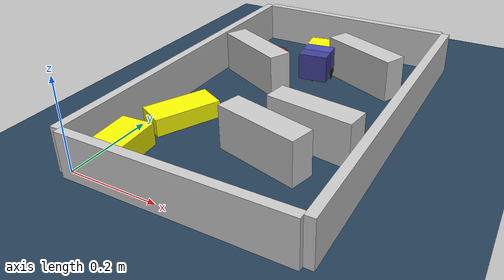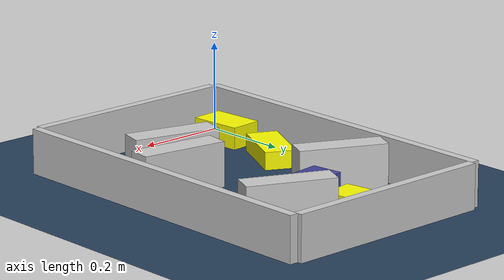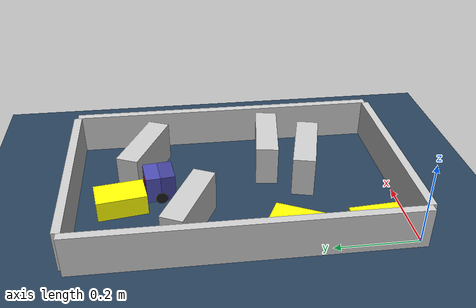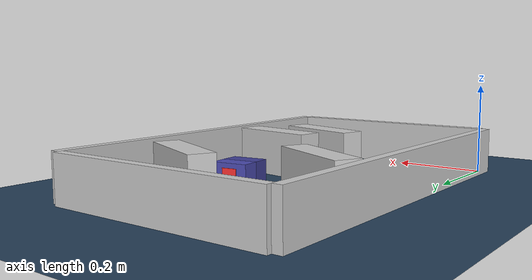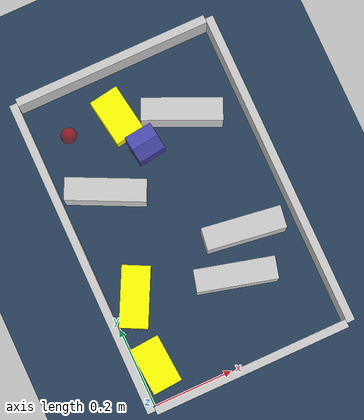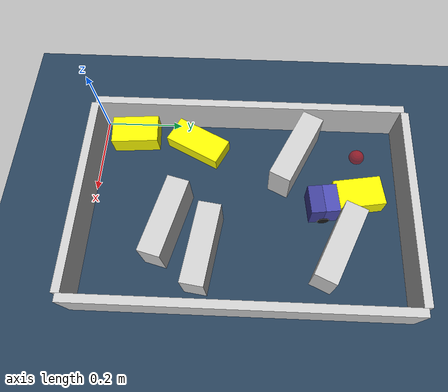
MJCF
<?xml version='1.0' encoding='utf-8'?>
<mujoco model="real_buildable">
  <compiler angle="degree" />
  <option timestep="0.002" integrator="implicitfast" iterations="100" cone="elliptic" />
  <default>
    <geom density="1" />
  </default>
  <asset>
    <texture builtin="gradient" height="3072" rgb1="0.3 0.5 0.7" rgb2="0 0 0" type="skybox" width="512" />
    <texture builtin="checker" height="300" mark="edge" markrgb="0.8 0.8 0.8" name="groundplane" rgb1="0.2 0.3 0.4" rgb2="0.1 0.2 0.3" type="2d" width="300" />
    <material name="groundplane" reflectance="0.2" texrepeat="5 5" texture="groundplane" texuniform="true" />
  </asset>
  <worldbody>
    <light dir="0 0 -1" directional="true" pos="0 0 1.5" />
    <geom name="floor" type="plane" condim="4" friction="0.5 0.005 0.001" material="groundplane" size="0 0 0.05" />
    <body name="walls">
      <geom name="wall_boundary_left" type="box" condim="4" friction="1.0 0.005 0.0001" rgba="0.8 0.8 0.8 1" pos="-0.010000 0.387500 0.050000" euler="0 0 0.000000" size="0.010000 0.397500 0.050000" />
      <geom name="wall_boundary_right" type="box" condim="4" friction="1.0 0.005 0.0001" rgba="0.8 0.8 0.8 1" pos="0.500000 0.387500 0.050000" euler="0 0 0.000000" size="0.010000 0.397500 0.050000" />
      <geom name="wall_boundary_bottom" type="box" condim="4" friction="1.0 0.005 0.0001" rgba="0.8 0.8 0.8 1" pos="0.245000 -0.010000 0.050000" euler="0 0 0.000000" size="0.245000 0.010000 0.050000" />
      <geom name="wall_boundary_top" type="box" condim="4" friction="1.0 0.005 0.0001" rgba="0.8 0.8 0.8 1" pos="0.245000 0.785000 0.050000" euler="0 0 0.000000" size="0.245000 0.010000 0.050000" />
      <geom name="wall_inner_1" type="box" condim="4" friction="1.0 0.005 0.0001" rgba="0.8 0.8 0.8 1" pos="0.302246 0.201535 0.050000" euler="0 0 -14.604486" size="0.097500 0.027500 0.050000" />
      <geom name="wall_inner_2" type="box" condim="4" friction="1.0 0.005 0.0001" rgba="0.8 0.8 0.8 1" pos="0.364854 0.292477 0.050000" euler="0 0 -8.062091" size="0.097500 0.027500 0.050000" />
      <geom name="wall_inner_3" type="box" condim="4" friction="1.0 0.005 0.0001" rgba="0.8 0.8 0.8 1" pos="0.106000 0.510000 0.050000" euler="0 0 154.200000" size="0.097500 0.027500 0.050000" />
      <geom name="wall_inner_4" type="box" condim="4" friction="1.0 0.005 0.0001" rgba="0.8 0.8 0.8 1" pos="0.350000 0.610000 0.050000" euler="0 0 155.700000" size="0.097500 0.027500 0.050000" />
    </body>
    <body name="car" pos="0.23788777893944402 0.57571683922290851 0.01" quat="0.66191566743150243 0 0 0.74957831425989685">
      <freejoint name="car_freejoint" />
      <inertial pos="0 0 0.0375" mass="0.35" diaginertia="0.000266 0.000266 0.000286" />
      <geom name="front_chassis_collision" type="box" pos="0.0175 0 0.0375" size="0.0175 0.035 0.0325" rgba="0.3 0.3 0.7 1" />
      <geom name="rear_chassis_collision" type="box" pos="-0.0175 0 0.0375" size="0.0175 0.035 0.0325" rgba="0.25 0.25 0.6 1" />
      <geom name="front_marker" type="box" pos="0.034 0 0.0505" size="0.002 0.015 0.01" rgba="1 0.2 0.2 1" contype="0" conaffinity="0" />
      <body name="rear_support_body" pos="-0.03 0 0.0025">
        <joint name="rear_caster_joint" type="ball" damping="0.0001" />
        <inertial pos="0 0 0" mass="0.025" diaginertia="0.000001 0.000001 0.000001" />
        <geom name="rear_support" type="sphere" pos="0 0 0" size="0.0025" friction="0 0 0" rgba="0.7 0.1 0.1 1" />
      </body>
      <body name="front_support_body" pos="0.03 0 0.0025">
        <joint name="front_caster_joint" type="ball" damping="0.0001" />
        <inertial pos="0 0 0" mass="0.025" diaginertia="0.000001 0.000001 0.000001" />
        <geom name="front_support" type="sphere" pos="0 0 0" size="0.0025" friction="0 0 0" rgba="0.1 0.7 0.1 1" />
      </body>
      <body name="left_wheel" pos="0 0.0375 0.015">
        <inertial pos="0 0 0" mass="0.05" diaginertia="0.000003 0.000006 0.000003" />
        <joint name="left_wheel_joint" type="hinge" axis="0 1 0" damping="0.01" armature="0.0001" />
        <geom name="left_wheel_collision" type="cylinder" size="0.015 0.0005" euler="90 0 0" rgba="0.1 0.1 0.1 1" />
      </body>
      <body name="right_wheel" pos="0 -0.0375 0.015">
        <inertial pos="0 0 0" mass="0.05" diaginertia="0.000003 0.000006 0.000003" />
        <joint name="right_wheel_joint" type="hinge" axis="0 1 0" damping="0.01" armature="0.0001" />
        <geom name="right_wheel_collision" type="cylinder" size="0.015 0.0005" euler="90 0 0" rgba="0.1 0.1 0.1 1" />
      </body>
    </body>
    <body name="obstacle_0_movable">
      <geom name="obstacle_0_movable" condim="4" pos="0.065036190608367267 0.25516837164878614 0.02" friction="1 0.005 0.0001" rgba="1 1 0 1" size="0.035000 0.075000 0.020000" type="box" mass="0.1" quat="0.23155659254010744 0 0 0.97282143502865659" />
      <joint type="free" />
    </body>
    <body name="obstacle_1_movable">
      <geom name="obstacle_1_movable" condim="4" pos="0.20480812482907954 0.66901191864101517 0.025000000000000001" friction="1 0.005 0.0001" rgba="1 1 0 1" size="0.037500 0.060000 0.025000" type="box" mass="0.1" quat="0.99693170392004093 0 0 0.078276290912918683" />
      <joint type="free" />
    </body>
    <body name="obstacle_2_movable">
      <geom name="obstacle_2_movable" condim="4" pos="0.043630000000000065 0.087460999999999761 0.025000000000000001" friction="1 0.005 0.0001" rgba="1 1 0 1" size="0.037500 0.060000 0.025000" type="box" mass="0.1" quat="0.99934662453484602 0 0 0.036143104886124724" />
      <joint type="free" />
    </body>
    <site name="goal" type="sphere" pos="0.080000 0.680000 0.0" size="0.02" rgba="1 0 0 0.5" />
  </worldbody>
  <actuator>
    <velocity name="left_wheel_drive" joint="left_wheel_joint" ctrlrange="-25 25" kv="0.75" forcerange="-0.5 0.5" />
    <velocity name="right_wheel_drive" joint="right_wheel_joint" ctrlrange="-25 25" kv="0.75" forcerange="-0.5 0.5" />
  </actuator>
</mujoco>
